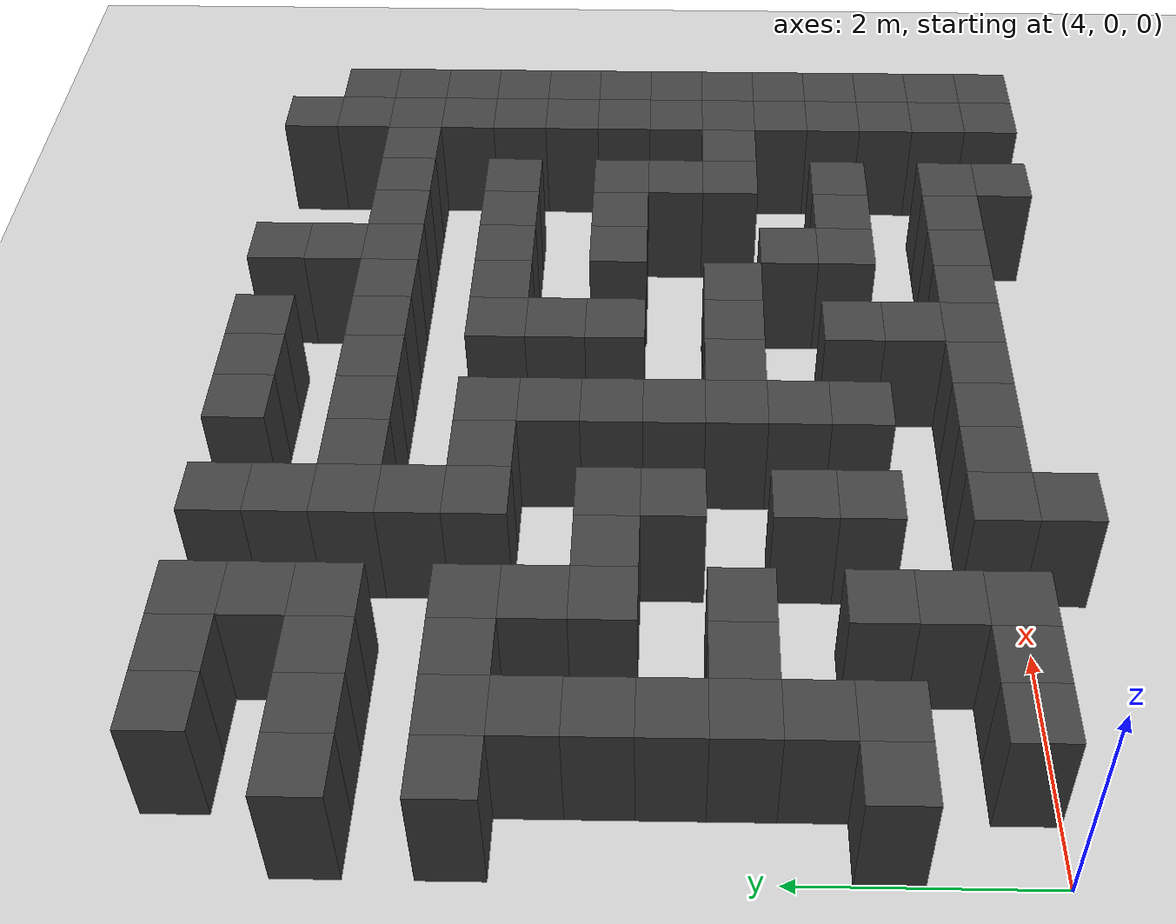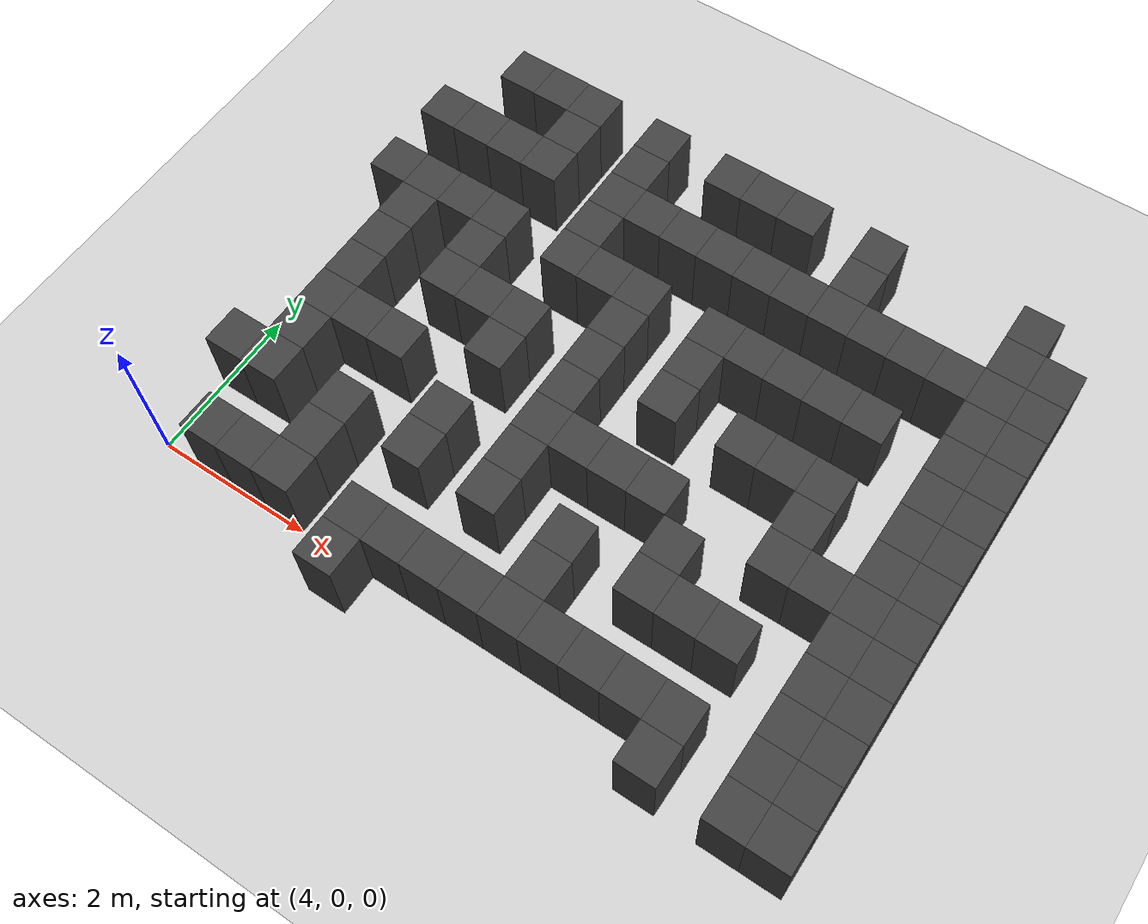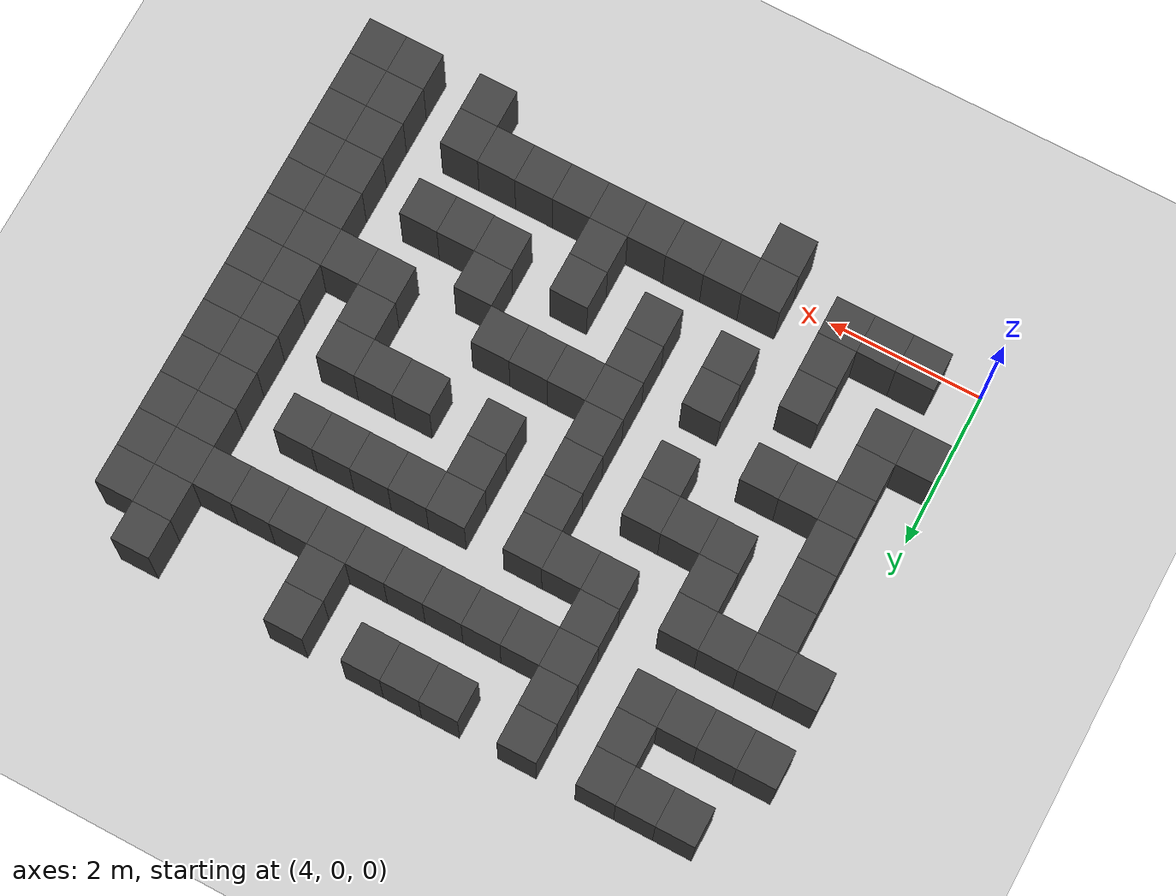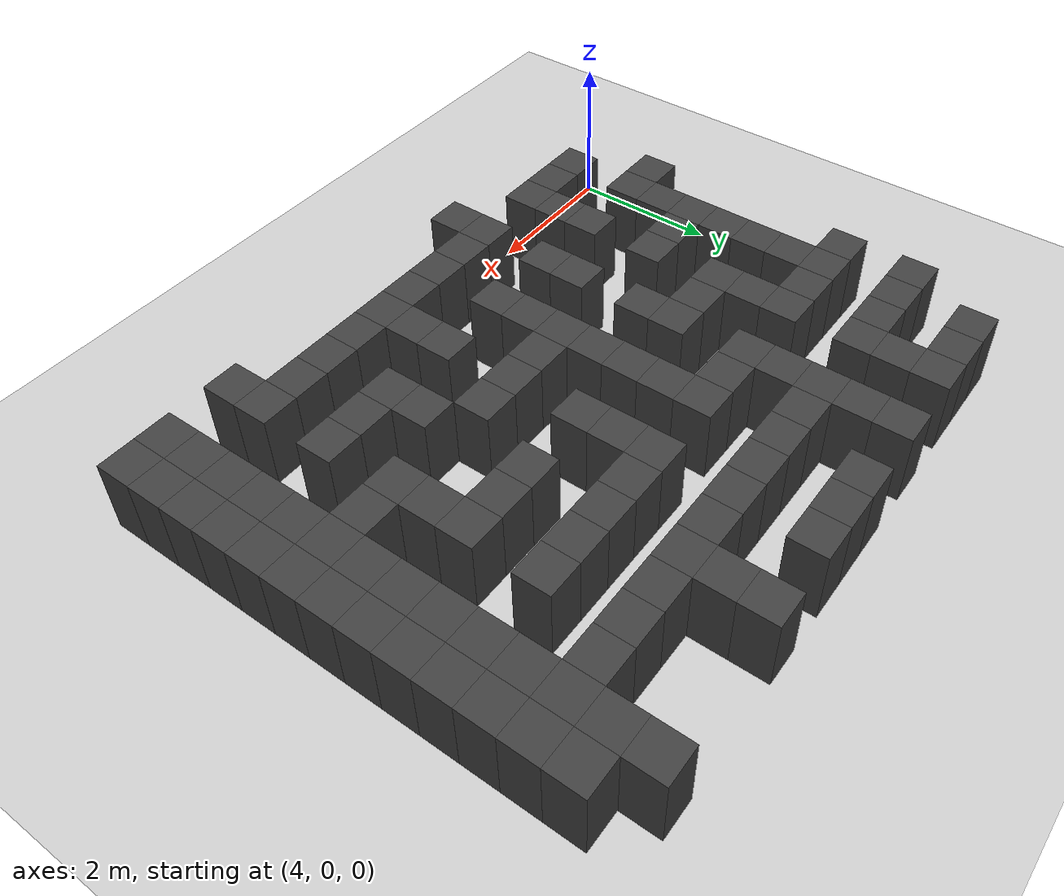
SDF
<sdf version="1.7">
 <world name="map_18914">
  <model name="ground_plane">
   <static>true</static>
   <link name="link">
    <collision name="collision">
     <geometry><plane><normal>0 0 1</normal><size>200 200</size></plane></geometry>
    </collision>
    <visual name="visual">
     <geometry><plane><normal>0 0 1</normal><size>200 200</size></plane></geometry>
     <material><ambient>0.8 0.8 0.8 1</ambient><diffuse>0.8 0.8 0.8 1</diffuse></material>
    </visual>
   </link>
  </model>
  <model name="maze_environment">
   <static>true</static>
   <link name="wall_338">
    <pose>4.750 6.250 0.500 0 0 0</pose>
    <collision name="col"><geometry><box><size>0.5 0.5 1.0</size></box></geometry></collision>
    <visual name="vis">
     <geometry><box><size>0.5 0.5 1.0</size></box></geometry>
     <material><ambient>0.15 0.15 0.15 1</ambient><diffuse>0.25 0.25 0.25 1</diffuse></material>
    </visual>
   </link>
   <link name="wall_339">
    <pose>5.250 6.250 0.500 0 0 0</pose>
    <collision name="col"><geometry><box><size>0.5 0.5 1.0</size></box></geometry></collision>
    <visual name="vis">
     <geometry><box><size>0.5 0.5 1.0</size></box></geometry>
     <material><ambient>0.15 0.15 0.15 1</ambient><diffuse>0.25 0.25 0.25 1</diffuse></material>
    </visual>
   </link>
   <link name="wall_340">
    <pose>5.750 6.250 0.500 0 0 0</pose>
    <collision name="col"><geometry><box><size>0.5 0.5 1.0</size></box></geometry></collision>
    <visual name="vis">
     <geometry><box><size>0.5 0.5 1.0</size></box></geometry>
     <material><ambient>0.15 0.15 0.15 1</ambient><diffuse>0.25 0.25 0.25 1</diffuse></material>
    </visual>
   </link>
   <link name="wall_341">
    <pose>6.750 6.250 0.500 0 0 0</pose>
    <collision name="col"><geometry><box><size>0.5 0.5 1.0</size></box></geometry></collision>
    <visual name="vis">
     <geometry><box><size>0.5 0.5 1.0</size></box></geometry>
     <material><ambient>0.15 0.15 0.15 1</ambient><diffuse>0.25 0.25 0.25 1</diffuse></material>
    </visual>
   </link>
   <link name="wall_342">
    <pose>7.750 6.250 0.500 0 0 0</pose>
    <collision name="col"><geometry><box><size>0.5 0.5 1.0</size></box></geometry></collision>
    <visual name="vis">
     <geometry><box><size>0.5 0.5 1.0</size></box></geometry>
     <material><ambient>0.15 0.15 0.15 1</ambient><diffuse>0.25 0.25 0.25 1</diffuse></material>
    </visual>
   </link>
   <link name="wall_343">
    <pose>8.250 6.250 0.500 0 0 0</pose>
    <collision name="col"><geometry><box><size>0.5 0.5 1.0</size></box></geometry></collision>
    <visual name="vis">
     <geometry><box><size>0.5 0.5 1.0</size></box></geometry>
     <material><ambient>0.15 0.15 0.15 1</ambient><diffuse>0.25 0.25 0.25 1</diffuse></material>
    </visual>
   </link>
   <link name="wall_344">
    <pose>8.750 6.250 0.500 0 0 0</pose>
    <collision name="col"><geometry><box><size>0.5 0.5 1.0</size></box></geometry></collision>
    <visual name="vis">
     <geometry><box><size>0.5 0.5 1.0</size></box></geometry>
     <material><ambient>0.15 0.15 0.15 1</ambient><diffuse>0.25 0.25 0.25 1</diffuse></material>
    </visual>
   </link>
   <link name="wall_345">
    <pose>9.750 6.250 0.500 0 0 0</pose>
    <collision name="col"><geometry><box><size>0.5 0.5 1.0</size></box></geometry></collision>
    <visual name="vis">
     <geometry><box><size>0.5 0.5 1.0</size></box></geometry>
     <material><ambient>0.15 0.15 0.15 1</ambient><diffuse>0.25 0.25 0.25 1</diffuse></material>
    </visual>
   </link>
   <link name="wall_346">
    <pose>11.750 6.250 0.500 0 0 0</pose>
    <collision name="col"><geometry><box><size>0.5 0.5 1.0</size></box></geometry></collision>
    <visual name="vis">
     <geometry><box><size>0.5 0.5 1.0</size></box></geometry>
     <material><ambient>0.15 0.15 0.15 1</ambient><diffuse>0.25 0.25 0.25 1</diffuse></material>
    </visual>
   </link>
   <link name="wall_357">
    <pose>5.750 5.750 0.500 0 0 0</pose>
    <collision name="col"><geometry><box><size>0.5 0.5 1.0</size></box></geometry></collision>
    <visual name="vis">
     <geometry><box><size>0.5 0.5 1.0</size></box></geometry>
     <material><ambient>0.15 0.15 0.15 1</ambient><diffuse>0.25 0.25 0.25 1</diffuse></material>
    </visual>
   </link>
   <link name="wall_358">
    <pose>6.750 5.750 0.500 0 0 0</pose>
    <collision name="col"><geometry><box><size>0.5 0.5 1.0</size></box></geometry></collision>
    <visual name="vis">
     <geometry><box><size>0.5 0.5 1.0</size></box></geometry>
     <material><ambient>0.15 0.15 0.15 1</ambient><diffuse>0.25 0.25 0.25 1</diffuse></material>
    </visual>
   </link>
   <link name="wall_359">
    <pose>9.750 5.750 0.500 0 0 0</pose>
    <collision name="col"><geometry><box><size>0.5 0.5 1.0</size></box></geometry></collision>
    <visual name="vis">
     <geometry><box><size>0.5 0.5 1.0</size></box></geometry>
     <material><ambient>0.15 0.15 0.15 1</ambient><diffuse>0.25 0.25 0.25 1</diffuse></material>
    </visual>
   </link>
   <link name="wall_360">
    <pose>11.750 5.750 0.500 0 0 0</pose>
    <collision name="col"><geometry><box><size>0.5 0.5 1.0</size></box></geometry></collision>
    <visual name="vis">
     <geometry><box><size>0.5 0.5 1.0</size></box></geometry>
     <material><ambient>0.15 0.15 0.15 1</ambient><diffuse>0.25 0.25 0.25 1</diffuse></material>
    </visual>
   </link>
   <link name="wall_361">
    <pose>12.250 5.750 0.500 0 0 0</pose>
    <collision name="col"><geometry><box><size>0.5 0.5 1.0</size></box></geometry></collision>
    <visual name="vis">
     <geometry><box><size>0.5 0.5 1.0</size></box></geometry>
     <material><ambient>0.15 0.15 0.15 1</ambient><diffuse>0.25 0.25 0.25 1</diffuse></material>
    </visual>
   </link>
   <link name="wall_386">
    <pose>4.250 5.250 0.500 0 0 0</pose>
    <collision name="col"><geometry><box><size>0.5 0.5 1.0</size></box></geometry></collision>
    <visual name="vis">
     <geometry><box><size>0.5 0.5 1.0</size></box></geometry>
     <material><ambient>0.15 0.15 0.15 1</ambient><diffuse>0.25 0.25 0.25 1</diffuse></material>
    </visual>
   </link>
   <link name="wall_387">
    <pose>4.750 5.250 0.500 0 0 0</pose>
    <collision name="col"><geometry><box><size>0.5 0.5 1.0</size></box></geometry></collision>
    <visual name="vis">
     <geometry><box><size>0.5 0.5 1.0</size></box></geometry>
     <material><ambient>0.15 0.15 0.15 1</ambient><diffuse>0.25 0.25 0.25 1</diffuse></material>
    </visual>
   </link>
   <link name="wall_388">
    <pose>5.250 5.250 0.500 0 0 0</pose>
    <collision name="col"><geometry><box><size>0.5 0.5 1.0</size></box></geometry></collision>
    <visual name="vis">
     <geometry><box><size>0.5 0.5 1.0</size></box></geometry>
     <material><ambient>0.15 0.15 0.15 1</ambient><diffuse>0.25 0.25 0.25 1</diffuse></material>
    </visual>
   </link>
   <link name="wall_389">
    <pose>5.750 5.250 0.500 0 0 0</pose>
    <collision name="col"><geometry><box><size>0.5 0.5 1.0</size></box></geometry></collision>
    <visual name="vis">
     <geometry><box><size>0.5 0.5 1.0</size></box></geometry>
     <material><ambient>0.15 0.15 0.15 1</ambient><diffuse>0.25 0.25 0.25 1</diffuse></material>
    </visual>
   </link>
   <link name="wall_390">
    <pose>6.750 5.250 0.500 0 0 0</pose>
    <collision name="col"><geometry><box><size>0.5 0.5 1.0</size></box></geometry></collision>
    <visual name="vis">
     <geometry><box><size>0.5 0.5 1.0</size></box></geometry>
     <material><ambient>0.15 0.15 0.15 1</ambient><diffuse>0.25 0.25 0.25 1</diffuse></material>
    </visual>
   </link>
   <link name="wall_391">
    <pose>7.250 5.250 0.500 0 0 0</pose>
    <collision name="col"><geometry><box><size>0.5 0.5 1.0</size></box></geometry></collision>
    <visual name="vis">
     <geometry><box><size>0.5 0.5 1.0</size></box></geometry>
     <material><ambient>0.15 0.15 0.15 1</ambient><diffuse>0.25 0.25 0.25 1</diffuse></material>
    </visual>
   </link>
   <link name="wall_392">
    <pose>7.750 5.250 0.500 0 0 0</pose>
    <collision name="col"><geometry><box><size>0.5 0.5 1.0</size></box></geometry></collision>
    <visual name="vis">
     <geometry><box><size>0.5 0.5 1.0</size></box></geometry>
     <material><ambient>0.15 0.15 0.15 1</ambient><diffuse>0.25 0.25 0.25 1</diffuse></material>
    </visual>
   </link>
   <link name="wall_393">
    <pose>8.250 5.250 0.500 0 0 0</pose>
    <collision name="col"><geometry><box><size>0.5 0.5 1.0</size></box></geometry></collision>
    <visual name="vis">
     <geometry><box><size>0.5 0.5 1.0</size></box></geometry>
     <material><ambient>0.15 0.15 0.15 1</ambient><diffuse>0.25 0.25 0.25 1</diffuse></material>
    </visual>
   </link>
   <link name="wall_394">
    <pose>8.750 5.250 0.500 0 0 0</pose>
    <collision name="col"><geometry><box><size>0.5 0.5 1.0</size></box></geometry></collision>
    <visual name="vis">
     <geometry><box><size>0.5 0.5 1.0</size></box></geometry>
     <material><ambient>0.15 0.15 0.15 1</ambient><diffuse>0.25 0.25 0.25 1</diffuse></material>
    </visual>
   </link>
   <link name="wall_395">
    <pose>9.250 5.250 0.500 0 0 0</pose>
    <collision name="col"><geometry><box><size>0.5 0.5 1.0</size></box></geometry></collision>
    <visual name="vis">
     <geometry><box><size>0.5 0.5 1.0</size></box></geometry>
     <material><ambient>0.15 0.15 0.15 1</ambient><diffuse>0.25 0.25 0.25 1</diffuse></material>
    </visual>
   </link>
   <link name="wall_396">
    <pose>9.750 5.250 0.500 0 0 0</pose>
    <collision name="col"><geometry><box><size>0.5 0.5 1.0</size></box></geometry></collision>
    <visual name="vis">
     <geometry><box><size>0.5 0.5 1.0</size></box></geometry>
     <material><ambient>0.15 0.15 0.15 1</ambient><diffuse>0.25 0.25 0.25 1</diffuse></material>
    </visual>
   </link>
   <link name="wall_397">
    <pose>10.250 5.250 0.500 0 0 0</pose>
    <collision name="col"><geometry><box><size>0.5 0.5 1.0</size></box></geometry></collision>
    <visual name="vis">
     <geometry><box><size>0.5 0.5 1.0</size></box></geometry>
     <material><ambient>0.15 0.15 0.15 1</ambient><diffuse>0.25 0.25 0.25 1</diffuse></material>
    </visual>
   </link>
   <link name="wall_398">
    <pose>10.750 5.250 0.500 0 0 0</pose>
    <collision name="col"><geometry><box><size>0.5 0.5 1.0</size></box></geometry></collision>
    <visual name="vis">
     <geometry><box><size>0.5 0.5 1.0</size></box></geometry>
     <material><ambient>0.15 0.15 0.15 1</ambient><diffuse>0.25 0.25 0.25 1</diffuse></material>
    </visual>
   </link>
   <link name="wall_399">
    <pose>11.250 5.250 0.500 0 0 0</pose>
    <collision name="col"><geometry><box><size>0.5 0.5 1.0</size></box></geometry></collision>
    <visual name="vis">
     <geometry><box><size>0.5 0.5 1.0</size></box></geometry>
     <material><ambient>0.15 0.15 0.15 1</ambient><diffuse>0.25 0.25 0.25 1</diffuse></material>
    </visual>
   </link>
   <link name="wall_400">
    <pose>11.750 5.250 0.500 0 0 0</pose>
    <collision name="col"><geometry><box><size>0.5 0.5 1.0</size></box></geometry></collision>
    <visual name="vis">
     <geometry><box><size>0.5 0.5 1.0</size></box></geometry>
     <material><ambient>0.15 0.15 0.15 1</ambient><diffuse>0.25 0.25 0.25 1</diffuse></material>
    </visual>
   </link>
   <link name="wall_401">
    <pose>12.250 5.250 0.500 0 0 0</pose>
    <collision name="col"><geometry><box><size>0.5 0.5 1.0</size></box></geometry></collision>
    <visual name="vis">
     <geometry><box><size>0.5 0.5 1.0</size></box></geometry>
     <material><ambient>0.15 0.15 0.15 1</ambient><diffuse>0.25 0.25 0.25 1</diffuse></material>
    </visual>
   </link>
   <link name="wall_411">
    <pose>6.750 4.750 0.500 0 0 0</pose>
    <collision name="col"><geometry><box><size>0.5 0.5 1.0</size></box></geometry></collision>
    <visual name="vis">
     <geometry><box><size>0.5 0.5 1.0</size></box></geometry>
     <material><ambient>0.15 0.15 0.15 1</ambient><diffuse>0.25 0.25 0.25 1</diffuse></material>
    </visual>
   </link>
   <link name="wall_412">
    <pose>11.750 4.750 0.500 0 0 0</pose>
    <collision name="col"><geometry><box><size>0.5 0.5 1.0</size></box></geometry></collision>
    <visual name="vis">
     <geometry><box><size>0.5 0.5 1.0</size></box></geometry>
     <material><ambient>0.15 0.15 0.15 1</ambient><diffuse>0.25 0.25 0.25 1</diffuse></material>
    </visual>
   </link>
   <link name="wall_413">
    <pose>12.250 4.750 0.500 0 0 0</pose>
    <collision name="col"><geometry><box><size>0.5 0.5 1.0</size></box></geometry></collision>
    <visual name="vis">
     <geometry><box><size>0.5 0.5 1.0</size></box></geometry>
     <material><ambient>0.15 0.15 0.15 1</ambient><diffuse>0.25 0.25 0.25 1</diffuse></material>
    </visual>
   </link>
   <link name="wall_438">
    <pose>4.250 4.250 0.500 0 0 0</pose>
    <collision name="col"><geometry><box><size>0.5 0.5 1.0</size></box></geometry></collision>
    <visual name="vis">
     <geometry><box><size>0.5 0.5 1.0</size></box></geometry>
     <material><ambient>0.15 0.15 0.15 1</ambient><diffuse>0.25 0.25 0.25 1</diffuse></material>
    </visual>
   </link>
   <link name="wall_439">
    <pose>4.750 4.250 0.500 0 0 0</pose>
    <collision name="col"><geometry><box><size>0.5 0.5 1.0</size></box></geometry></collision>
    <visual name="vis">
     <geometry><box><size>0.5 0.5 1.0</size></box></geometry>
     <material><ambient>0.15 0.15 0.15 1</ambient><diffuse>0.25 0.25 0.25 1</diffuse></material>
    </visual>
   </link>
   <link name="wall_440">
    <pose>5.250 4.250 0.500 0 0 0</pose>
    <collision name="col"><geometry><box><size>0.5 0.5 1.0</size></box></geometry></collision>
    <visual name="vis">
     <geometry><box><size>0.5 0.5 1.0</size></box></geometry>
     <material><ambient>0.15 0.15 0.15 1</ambient><diffuse>0.25 0.25 0.25 1</diffuse></material>
    </visual>
   </link>
   <link name="wall_441">
    <pose>5.750 4.250 0.500 0 0 0</pose>
    <collision name="col"><geometry><box><size>0.5 0.5 1.0</size></box></geometry></collision>
    <visual name="vis">
     <geometry><box><size>0.5 0.5 1.0</size></box></geometry>
     <material><ambient>0.15 0.15 0.15 1</ambient><diffuse>0.25 0.25 0.25 1</diffuse></material>
    </visual>
   </link>
   <link name="wall_442">
    <pose>6.750 4.250 0.500 0 0 0</pose>
    <collision name="col"><geometry><box><size>0.5 0.5 1.0</size></box></geometry></collision>
    <visual name="vis">
     <geometry><box><size>0.5 0.5 1.0</size></box></geometry>
     <material><ambient>0.15 0.15 0.15 1</ambient><diffuse>0.25 0.25 0.25 1</diffuse></material>
    </visual>
   </link>
   <link name="wall_443">
    <pose>7.250 4.250 0.500 0 0 0</pose>
    <collision name="col"><geometry><box><size>0.5 0.5 1.0</size></box></geometry></collision>
    <visual name="vis">
     <geometry><box><size>0.5 0.5 1.0</size></box></geometry>
     <material><ambient>0.15 0.15 0.15 1</ambient><diffuse>0.25 0.25 0.25 1</diffuse></material>
    </visual>
   </link>
   <link name="wall_444">
    <pose>7.750 4.250 0.500 0 0 0</pose>
    <collision name="col"><geometry><box><size>0.5 0.5 1.0</size></box></geometry></collision>
    <visual name="vis">
     <geometry><box><size>0.5 0.5 1.0</size></box></geometry>
     <material><ambient>0.15 0.15 0.15 1</ambient><diffuse>0.25 0.25 0.25 1</diffuse></material>
    </visual>
   </link>
   <link name="wall_445">
    <pose>8.750 4.250 0.500 0 0 0</pose>
    <collision name="col"><geometry><box><size>0.5 0.5 1.0</size></box></geometry></collision>
    <visual name="vis">
     <geometry><box><size>0.5 0.5 1.0</size></box></geometry>
     <material><ambient>0.15 0.15 0.15 1</ambient><diffuse>0.25 0.25 0.25 1</diffuse></material>
    </visual>
   </link>
   <link name="wall_446">
    <pose>9.250 4.250 0.500 0 0 0</pose>
    <collision name="col"><geometry><box><size>0.5 0.5 1.0</size></box></geometry></collision>
    <visual name="vis">
     <geometry><box><size>0.5 0.5 1.0</size></box></geometry>
     <material><ambient>0.15 0.15 0.15 1</ambient><diffuse>0.25 0.25 0.25 1</diffuse></material>
    </visual>
   </link>
   <link name="wall_447">
    <pose>9.750 4.250 0.500 0 0 0</pose>
    <collision name="col"><geometry><box><size>0.5 0.5 1.0</size></box></geometry></collision>
    <visual name="vis">
     <geometry><box><size>0.5 0.5 1.0</size></box></geometry>
     <material><ambient>0.15 0.15 0.15 1</ambient><diffuse>0.25 0.25 0.25 1</diffuse></material>
    </visual>
   </link>
   <link name="wall_448">
    <pose>10.250 4.250 0.500 0 0 0</pose>
    <collision name="col"><geometry><box><size>0.5 0.5 1.0</size></box></geometry></collision>
    <visual name="vis">
     <geometry><box><size>0.5 0.5 1.0</size></box></geometry>
     <material><ambient>0.15 0.15 0.15 1</ambient><diffuse>0.25 0.25 0.25 1</diffuse></material>
    </visual>
   </link>
   <link name="wall_449">
    <pose>10.750 4.250 0.500 0 0 0</pose>
    <collision name="col"><geometry><box><size>0.5 0.5 1.0</size></box></geometry></collision>
    <visual name="vis">
     <geometry><box><size>0.5 0.5 1.0</size></box></geometry>
     <material><ambient>0.15 0.15 0.15 1</ambient><diffuse>0.25 0.25 0.25 1</diffuse></material>
    </visual>
   </link>
   <link name="wall_450">
    <pose>11.750 4.250 0.500 0 0 0</pose>
    <collision name="col"><geometry><box><size>0.5 0.5 1.0</size></box></geometry></collision>
    <visual name="vis">
     <geometry><box><size>0.5 0.5 1.0</size></box></geometry>
     <material><ambient>0.15 0.15 0.15 1</ambient><diffuse>0.25 0.25 0.25 1</diffuse></material>
    </visual>
   </link>
   <link name="wall_451">
    <pose>12.250 4.250 0.500 0 0 0</pose>
    <collision name="col"><geometry><box><size>0.5 0.5 1.0</size></box></geometry></collision>
    <visual name="vis">
     <geometry><box><size>0.5 0.5 1.0</size></box></geometry>
     <material><ambient>0.15 0.15 0.15 1</ambient><diffuse>0.25 0.25 0.25 1</diffuse></material>
    </visual>
   </link>
   <link name="wall_458">
    <pose>4.750 3.750 0.500 0 0 0</pose>
    <collision name="col"><geometry><box><size>0.5 0.5 1.0</size></box></geometry></collision>
    <visual name="vis">
     <geometry><box><size>0.5 0.5 1.0</size></box></geometry>
     <material><ambient>0.15 0.15 0.15 1</ambient><diffuse>0.25 0.25 0.25 1</diffuse></material>
    </visual>
   </link>
   <link name="wall_459">
    <pose>5.750 3.750 0.500 0 0 0</pose>
    <collision name="col"><geometry><box><size>0.5 0.5 1.0</size></box></geometry></collision>
    <visual name="vis">
     <geometry><box><size>0.5 0.5 1.0</size></box></geometry>
     <material><ambient>0.15 0.15 0.15 1</ambient><diffuse>0.25 0.25 0.25 1</diffuse></material>
    </visual>
   </link>
   <link name="wall_460">
    <pose>7.750 3.750 0.500 0 0 0</pose>
    <collision name="col"><geometry><box><size>0.5 0.5 1.0</size></box></geometry></collision>
    <visual name="vis">
     <geometry><box><size>0.5 0.5 1.0</size></box></geometry>
     <material><ambient>0.15 0.15 0.15 1</ambient><diffuse>0.25 0.25 0.25 1</diffuse></material>
    </visual>
   </link>
   <link name="wall_461">
    <pose>8.750 3.750 0.500 0 0 0</pose>
    <collision name="col"><geometry><box><size>0.5 0.5 1.0</size></box></geometry></collision>
    <visual name="vis">
     <geometry><box><size>0.5 0.5 1.0</size></box></geometry>
     <material><ambient>0.15 0.15 0.15 1</ambient><diffuse>0.25 0.25 0.25 1</diffuse></material>
    </visual>
   </link>
   <link name="wall_462">
    <pose>11.750 3.750 0.500 0 0 0</pose>
    <collision name="col"><geometry><box><size>0.5 0.5 1.0</size></box></geometry></collision>
    <visual name="vis">
     <geometry><box><size>0.5 0.5 1.0</size></box></geometry>
     <material><ambient>0.15 0.15 0.15 1</ambient><diffuse>0.25 0.25 0.25 1</diffuse></material>
    </visual>
   </link>
   <link name="wall_463">
    <pose>12.250 3.750 0.500 0 0 0</pose>
    <collision name="col"><geometry><box><size>0.5 0.5 1.0</size></box></geometry></collision>
    <visual name="vis">
     <geometry><box><size>0.5 0.5 1.0</size></box></geometry>
     <material><ambient>0.15 0.15 0.15 1</ambient><diffuse>0.25 0.25 0.25 1</diffuse></material>
    </visual>
   </link>
   <link name="wall_493">
    <pose>4.750 3.250 0.500 0 0 0</pose>
    <collision name="col"><geometry><box><size>0.5 0.5 1.0</size></box></geometry></collision>
    <visual name="vis">
     <geometry><box><size>0.5 0.5 1.0</size></box></geometry>
     <material><ambient>0.15 0.15 0.15 1</ambient><diffuse>0.25 0.25 0.25 1</diffuse></material>
    </visual>
   </link>
   <link name="wall_494">
    <pose>5.750 3.250 0.500 0 0 0</pose>
    <collision name="col"><geometry><box><size>0.5 0.5 1.0</size></box></geometry></collision>
    <visual name="vis">
     <geometry><box><size>0.5 0.5 1.0</size></box></geometry>
     <material><ambient>0.15 0.15 0.15 1</ambient><diffuse>0.25 0.25 0.25 1</diffuse></material>
    </visual>
   </link>
   <link name="wall_495">
    <pose>6.250 3.250 0.500 0 0 0</pose>
    <collision name="col"><geometry><box><size>0.5 0.5 1.0</size></box></geometry></collision>
    <visual name="vis">
     <geometry><box><size>0.5 0.5 1.0</size></box></geometry>
     <material><ambient>0.15 0.15 0.15 1</ambient><diffuse>0.25 0.25 0.25 1</diffuse></material>
    </visual>
   </link>
   <link name="wall_496">
    <pose>6.750 3.250 0.500 0 0 0</pose>
    <collision name="col"><geometry><box><size>0.5 0.5 1.0</size></box></geometry></collision>
    <visual name="vis">
     <geometry><box><size>0.5 0.5 1.0</size></box></geometry>
     <material><ambient>0.15 0.15 0.15 1</ambient><diffuse>0.25 0.25 0.25 1</diffuse></material>
    </visual>
   </link>
   <link name="wall_497">
    <pose>7.750 3.250 0.500 0 0 0</pose>
    <collision name="col"><geometry><box><size>0.5 0.5 1.0</size></box></geometry></collision>
    <visual name="vis">
     <geometry><box><size>0.5 0.5 1.0</size></box></geometry>
     <material><ambient>0.15 0.15 0.15 1</ambient><diffuse>0.25 0.25 0.25 1</diffuse></material>
    </visual>
   </link>
   <link name="wall_498">
    <pose>8.750 3.250 0.500 0 0 0</pose>
    <collision name="col"><geometry><box><size>0.5 0.5 1.0</size></box></geometry></collision>
    <visual name="vis">
     <geometry><box><size>0.5 0.5 1.0</size></box></geometry>
     <material><ambient>0.15 0.15 0.15 1</ambient><diffuse>0.25 0.25 0.25 1</diffuse></material>
    </visual>
   </link>
   <link name="wall_499">
    <pose>9.750 3.250 0.500 0 0 0</pose>
    <collision name="col"><geometry><box><size>0.5 0.5 1.0</size></box></geometry></collision>
    <visual name="vis">
     <geometry><box><size>0.5 0.5 1.0</size></box></geometry>
     <material><ambient>0.15 0.15 0.15 1</ambient><diffuse>0.25 0.25 0.25 1</diffuse></material>
    </visual>
   </link>
   <link name="wall_500">
    <pose>10.250 3.250 0.500 0 0 0</pose>
    <collision name="col"><geometry><box><size>0.5 0.5 1.0</size></box></geometry></collision>
    <visual name="vis">
     <geometry><box><size>0.5 0.5 1.0</size></box></geometry>
     <material><ambient>0.15 0.15 0.15 1</ambient><diffuse>0.25 0.25 0.25 1</diffuse></material>
    </visual>
   </link>
   <link name="wall_501">
    <pose>10.750 3.250 0.500 0 0 0</pose>
    <collision name="col"><geometry><box><size>0.5 0.5 1.0</size></box></geometry></collision>
    <visual name="vis">
     <geometry><box><size>0.5 0.5 1.0</size></box></geometry>
     <material><ambient>0.15 0.15 0.15 1</ambient><diffuse>0.25 0.25 0.25 1</diffuse></material>
    </visual>
   </link>
   <link name="wall_502">
    <pose>11.750 3.250 0.500 0 0 0</pose>
    <collision name="col"><geometry><box><size>0.5 0.5 1.0</size></box></geometry></collision>
    <visual name="vis">
     <geometry><box><size>0.5 0.5 1.0</size></box></geometry>
     <material><ambient>0.15 0.15 0.15 1</ambient><diffuse>0.25 0.25 0.25 1</diffuse></material>
    </visual>
   </link>
   <link name="wall_503">
    <pose>12.250 3.250 0.500 0 0 0</pose>
    <collision name="col"><geometry><box><size>0.5 0.5 1.0</size></box></geometry></collision>
    <visual name="vis">
     <geometry><box><size>0.5 0.5 1.0</size></box></geometry>
     <material><ambient>0.15 0.15 0.15 1</ambient><diffuse>0.25 0.25 0.25 1</diffuse></material>
    </visual>
   </link>
   <link name="wall_510">
    <pose>4.750 2.750 0.500 0 0 0</pose>
    <collision name="col"><geometry><box><size>0.5 0.5 1.0</size></box></geometry></collision>
    <visual name="vis">
     <geometry><box><size>0.5 0.5 1.0</size></box></geometry>
     <material><ambient>0.15 0.15 0.15 1</ambient><diffuse>0.25 0.25 0.25 1</diffuse></material>
    </visual>
   </link>
   <link name="wall_511">
    <pose>6.750 2.750 0.500 0 0 0</pose>
    <collision name="col"><geometry><box><size>0.5 0.5 1.0</size></box></geometry></collision>
    <visual name="vis">
     <geometry><box><size>0.5 0.5 1.0</size></box></geometry>
     <material><ambient>0.15 0.15 0.15 1</ambient><diffuse>0.25 0.25 0.25 1</diffuse></material>
    </visual>
   </link>
   <link name="wall_512">
    <pose>7.750 2.750 0.500 0 0 0</pose>
    <collision name="col"><geometry><box><size>0.5 0.5 1.0</size></box></geometry></collision>
    <visual name="vis">
     <geometry><box><size>0.5 0.5 1.0</size></box></geometry>
     <material><ambient>0.15 0.15 0.15 1</ambient><diffuse>0.25 0.25 0.25 1</diffuse></material>
    </visual>
   </link>
   <link name="wall_513">
    <pose>10.750 2.750 0.500 0 0 0</pose>
    <collision name="col"><geometry><box><size>0.5 0.5 1.0</size></box></geometry></collision>
    <visual name="vis">
     <geometry><box><size>0.5 0.5 1.0</size></box></geometry>
     <material><ambient>0.15 0.15 0.15 1</ambient><diffuse>0.25 0.25 0.25 1</diffuse></material>
    </visual>
   </link>
   <link name="wall_514">
    <pose>11.750 2.750 0.500 0 0 0</pose>
    <collision name="col"><geometry><box><size>0.5 0.5 1.0</size></box></geometry></collision>
    <visual name="vis">
     <geometry><box><size>0.5 0.5 1.0</size></box></geometry>
     <material><ambient>0.15 0.15 0.15 1</ambient><diffuse>0.25 0.25 0.25 1</diffuse></material>
    </visual>
   </link>
   <link name="wall_515">
    <pose>12.250 2.750 0.500 0 0 0</pose>
    <collision name="col"><geometry><box><size>0.5 0.5 1.0</size></box></geometry></collision>
    <visual name="vis">
     <geometry><box><size>0.5 0.5 1.0</size></box></geometry>
     <material><ambient>0.15 0.15 0.15 1</ambient><diffuse>0.25 0.25 0.25 1</diffuse></material>
    </visual>
   </link>
   <link name="wall_541">
    <pose>4.750 2.250 0.500 0 0 0</pose>
    <collision name="col"><geometry><box><size>0.5 0.5 1.0</size></box></geometry></collision>
    <visual name="vis">
     <geometry><box><size>0.5 0.5 1.0</size></box></geometry>
     <material><ambient>0.15 0.15 0.15 1</ambient><diffuse>0.25 0.25 0.25 1</diffuse></material>
    </visual>
   </link>
   <link name="wall_542">
    <pose>5.250 2.250 0.500 0 0 0</pose>
    <collision name="col"><geometry><box><size>0.5 0.5 1.0</size></box></geometry></collision>
    <visual name="vis">
     <geometry><box><size>0.5 0.5 1.0</size></box></geometry>
     <material><ambient>0.15 0.15 0.15 1</ambient><diffuse>0.25 0.25 0.25 1</diffuse></material>
    </visual>
   </link>
   <link name="wall_543">
    <pose>5.750 2.250 0.500 0 0 0</pose>
    <collision name="col"><geometry><box><size>0.5 0.5 1.0</size></box></geometry></collision>
    <visual name="vis">
     <geometry><box><size>0.5 0.5 1.0</size></box></geometry>
     <material><ambient>0.15 0.15 0.15 1</ambient><diffuse>0.25 0.25 0.25 1</diffuse></material>
    </visual>
   </link>
   <link name="wall_544">
    <pose>7.750 2.250 0.500 0 0 0</pose>
    <collision name="col"><geometry><box><size>0.5 0.5 1.0</size></box></geometry></collision>
    <visual name="vis">
     <geometry><box><size>0.5 0.5 1.0</size></box></geometry>
     <material><ambient>0.15 0.15 0.15 1</ambient><diffuse>0.25 0.25 0.25 1</diffuse></material>
    </visual>
   </link>
   <link name="wall_545">
    <pose>8.250 2.250 0.500 0 0 0</pose>
    <collision name="col"><geometry><box><size>0.5 0.5 1.0</size></box></geometry></collision>
    <visual name="vis">
     <geometry><box><size>0.5 0.5 1.0</size></box></geometry>
     <material><ambient>0.15 0.15 0.15 1</ambient><diffuse>0.25 0.25 0.25 1</diffuse></material>
    </visual>
   </link>
   <link name="wall_546">
    <pose>8.750 2.250 0.500 0 0 0</pose>
    <collision name="col"><geometry><box><size>0.5 0.5 1.0</size></box></geometry></collision>
    <visual name="vis">
     <geometry><box><size>0.5 0.5 1.0</size></box></geometry>
     <material><ambient>0.15 0.15 0.15 1</ambient><diffuse>0.25 0.25 0.25 1</diffuse></material>
    </visual>
   </link>
   <link name="wall_547">
    <pose>9.250 2.250 0.500 0 0 0</pose>
    <collision name="col"><geometry><box><size>0.5 0.5 1.0</size></box></geometry></collision>
    <visual name="vis">
     <geometry><box><size>0.5 0.5 1.0</size></box></geometry>
     <material><ambient>0.15 0.15 0.15 1</ambient><diffuse>0.25 0.25 0.25 1</diffuse></material>
    </visual>
   </link>
   <link name="wall_548">
    <pose>10.750 2.250 0.500 0 0 0</pose>
    <collision name="col"><geometry><box><size>0.5 0.5 1.0</size></box></geometry></collision>
    <visual name="vis">
     <geometry><box><size>0.5 0.5 1.0</size></box></geometry>
     <material><ambient>0.15 0.15 0.15 1</ambient><diffuse>0.25 0.25 0.25 1</diffuse></material>
    </visual>
   </link>
   <link name="wall_549">
    <pose>11.250 2.250 0.500 0 0 0</pose>
    <collision name="col"><geometry><box><size>0.5 0.5 1.0</size></box></geometry></collision>
    <visual name="vis">
     <geometry><box><size>0.5 0.5 1.0</size></box></geometry>
     <material><ambient>0.15 0.15 0.15 1</ambient><diffuse>0.25 0.25 0.25 1</diffuse></material>
    </visual>
   </link>
   <link name="wall_550">
    <pose>11.750 2.250 0.500 0 0 0</pose>
    <collision name="col"><geometry><box><size>0.5 0.5 1.0</size></box></geometry></collision>
    <visual name="vis">
     <geometry><box><size>0.5 0.5 1.0</size></box></geometry>
     <material><ambient>0.15 0.15 0.15 1</ambient><diffuse>0.25 0.25 0.25 1</diffuse></material>
    </visual>
   </link>
   <link name="wall_551">
    <pose>12.250 2.250 0.500 0 0 0</pose>
    <collision name="col"><geometry><box><size>0.5 0.5 1.0</size></box></geometry></collision>
    <visual name="vis">
     <geometry><box><size>0.5 0.5 1.0</size></box></geometry>
     <material><ambient>0.15 0.15 0.15 1</ambient><diffuse>0.25 0.25 0.25 1</diffuse></material>
    </visual>
   </link>
   <link name="wall_560">
    <pose>4.750 1.750 0.500 0 0 0</pose>
    <collision name="col"><geometry><box><size>0.5 0.5 1.0</size></box></geometry></collision>
    <visual name="vis">
     <geometry><box><size>0.5 0.5 1.0</size></box></geometry>
     <material><ambient>0.15 0.15 0.15 1</ambient><diffuse>0.25 0.25 0.25 1</diffuse></material>
    </visual>
   </link>
   <link name="wall_561">
    <pose>6.750 1.750 0.500 0 0 0</pose>
    <collision name="col"><geometry><box><size>0.5 0.5 1.0</size></box></geometry></collision>
    <visual name="vis">
     <geometry><box><size>0.5 0.5 1.0</size></box></geometry>
     <material><ambient>0.15 0.15 0.15 1</ambient><diffuse>0.25 0.25 0.25 1</diffuse></material>
    </visual>
   </link>
   <link name="wall_562">
    <pose>7.750 1.750 0.500 0 0 0</pose>
    <collision name="col"><geometry><box><size>0.5 0.5 1.0</size></box></geometry></collision>
    <visual name="vis">
     <geometry><box><size>0.5 0.5 1.0</size></box></geometry>
     <material><ambient>0.15 0.15 0.15 1</ambient><diffuse>0.25 0.25 0.25 1</diffuse></material>
    </visual>
   </link>
   <link name="wall_563">
    <pose>9.750 1.750 0.500 0 0 0</pose>
    <collision name="col"><geometry><box><size>0.5 0.5 1.0</size></box></geometry></collision>
    <visual name="vis">
     <geometry><box><size>0.5 0.5 1.0</size></box></geometry>
     <material><ambient>0.15 0.15 0.15 1</ambient><diffuse>0.25 0.25 0.25 1</diffuse></material>
    </visual>
   </link>
   <link name="wall_564">
    <pose>11.750 1.750 0.500 0 0 0</pose>
    <collision name="col"><geometry><box><size>0.5 0.5 1.0</size></box></geometry></collision>
    <visual name="vis">
     <geometry><box><size>0.5 0.5 1.0</size></box></geometry>
     <material><ambient>0.15 0.15 0.15 1</ambient><diffuse>0.25 0.25 0.25 1</diffuse></material>
    </visual>
   </link>
   <link name="wall_565">
    <pose>12.250 1.750 0.500 0 0 0</pose>
    <collision name="col"><geometry><box><size>0.5 0.5 1.0</size></box></geometry></collision>
    <visual name="vis">
     <geometry><box><size>0.5 0.5 1.0</size></box></geometry>
     <material><ambient>0.15 0.15 0.15 1</ambient><diffuse>0.25 0.25 0.25 1</diffuse></material>
    </visual>
   </link>
   <link name="wall_591">
    <pose>4.250 1.250 0.500 0 0 0</pose>
    <collision name="col"><geometry><box><size>0.5 0.5 1.0</size></box></geometry></collision>
    <visual name="vis">
     <geometry><box><size>0.5 0.5 1.0</size></box></geometry>
     <material><ambient>0.15 0.15 0.15 1</ambient><diffuse>0.25 0.25 0.25 1</diffuse></material>
    </visual>
   </link>
   <link name="wall_592">
    <pose>4.750 1.250 0.500 0 0 0</pose>
    <collision name="col"><geometry><box><size>0.5 0.5 1.0</size></box></geometry></collision>
    <visual name="vis">
     <geometry><box><size>0.5 0.5 1.0</size></box></geometry>
     <material><ambient>0.15 0.15 0.15 1</ambient><diffuse>0.25 0.25 0.25 1</diffuse></material>
    </visual>
   </link>
   <link name="wall_593">
    <pose>5.750 1.250 0.500 0 0 0</pose>
    <collision name="col"><geometry><box><size>0.5 0.5 1.0</size></box></geometry></collision>
    <visual name="vis">
     <geometry><box><size>0.5 0.5 1.0</size></box></geometry>
     <material><ambient>0.15 0.15 0.15 1</ambient><diffuse>0.25 0.25 0.25 1</diffuse></material>
    </visual>
   </link>
   <link name="wall_594">
    <pose>6.750 1.250 0.500 0 0 0</pose>
    <collision name="col"><geometry><box><size>0.5 0.5 1.0</size></box></geometry></collision>
    <visual name="vis">
     <geometry><box><size>0.5 0.5 1.0</size></box></geometry>
     <material><ambient>0.15 0.15 0.15 1</ambient><diffuse>0.25 0.25 0.25 1</diffuse></material>
    </visual>
   </link>
   <link name="wall_595">
    <pose>7.750 1.250 0.500 0 0 0</pose>
    <collision name="col"><geometry><box><size>0.5 0.5 1.0</size></box></geometry></collision>
    <visual name="vis">
     <geometry><box><size>0.5 0.5 1.0</size></box></geometry>
     <material><ambient>0.15 0.15 0.15 1</ambient><diffuse>0.25 0.25 0.25 1</diffuse></material>
    </visual>
   </link>
   <link name="wall_596">
    <pose>8.750 1.250 0.500 0 0 0</pose>
    <collision name="col"><geometry><box><size>0.5 0.5 1.0</size></box></geometry></collision>
    <visual name="vis">
     <geometry><box><size>0.5 0.5 1.0</size></box></geometry>
     <material><ambient>0.15 0.15 0.15 1</ambient><diffuse>0.25 0.25 0.25 1</diffuse></material>
    </visual>
   </link>
   <link name="wall_597">
    <pose>9.750 1.250 0.500 0 0 0</pose>
    <collision name="col"><geometry><box><size>0.5 0.5 1.0</size></box></geometry></collision>
    <visual name="vis">
     <geometry><box><size>0.5 0.5 1.0</size></box></geometry>
     <material><ambient>0.15 0.15 0.15 1</ambient><diffuse>0.25 0.25 0.25 1</diffuse></material>
    </visual>
   </link>
   <link name="wall_598">
    <pose>10.250 1.250 0.500 0 0 0</pose>
    <collision name="col"><geometry><box><size>0.5 0.5 1.0</size></box></geometry></collision>
    <visual name="vis">
     <geometry><box><size>0.5 0.5 1.0</size></box></geometry>
     <material><ambient>0.15 0.15 0.15 1</ambient><diffuse>0.25 0.25 0.25 1</diffuse></material>
    </visual>
   </link>
   <link name="wall_599">
    <pose>10.750 1.250 0.500 0 0 0</pose>
    <collision name="col"><geometry><box><size>0.5 0.5 1.0</size></box></geometry></collision>
    <visual name="vis">
     <geometry><box><size>0.5 0.5 1.0</size></box></geometry>
     <material><ambient>0.15 0.15 0.15 1</ambient><diffuse>0.25 0.25 0.25 1</diffuse></material>
    </visual>
   </link>
   <link name="wall_600">
    <pose>11.750 1.250 0.500 0 0 0</pose>
    <collision name="col"><geometry><box><size>0.5 0.5 1.0</size></box></geometry></collision>
    <visual name="vis">
     <geometry><box><size>0.5 0.5 1.0</size></box></geometry>
     <material><ambient>0.15 0.15 0.15 1</ambient><diffuse>0.25 0.25 0.25 1</diffuse></material>
    </visual>
   </link>
   <link name="wall_601">
    <pose>12.250 1.250 0.500 0 0 0</pose>
    <collision name="col"><geometry><box><size>0.5 0.5 1.0</size></box></geometry></collision>
    <visual name="vis">
     <geometry><box><size>0.5 0.5 1.0</size></box></geometry>
     <material><ambient>0.15 0.15 0.15 1</ambient><diffuse>0.25 0.25 0.25 1</diffuse></material>
    </visual>
   </link>
   <link name="wall_610">
    <pose>5.750 0.750 0.500 0 0 0</pose>
    <collision name="col"><geometry><box><size>0.5 0.5 1.0</size></box></geometry></collision>
    <visual name="vis">
     <geometry><box><size>0.5 0.5 1.0</size></box></geometry>
     <material><ambient>0.15 0.15 0.15 1</ambient><diffuse>0.25 0.25 0.25 1</diffuse></material>
    </visual>
   </link>
   <link name="wall_611">
    <pose>8.750 0.750 0.500 0 0 0</pose>
    <collision name="col"><geometry><box><size>0.5 0.5 1.0</size></box></geometry></collision>
    <visual name="vis">
     <geometry><box><size>0.5 0.5 1.0</size></box></geometry>
     <material><ambient>0.15 0.15 0.15 1</ambient><diffuse>0.25 0.25 0.25 1</diffuse></material>
    </visual>
   </link>
   <link name="wall_612">
    <pose>11.750 0.750 0.500 0 0 0</pose>
    <collision name="col"><geometry><box><size>0.5 0.5 1.0</size></box></geometry></collision>
    <visual name="vis">
     <geometry><box><size>0.5 0.5 1.0</size></box></geometry>
     <material><ambient>0.15 0.15 0.15 1</ambient><diffuse>0.25 0.25 0.25 1</diffuse></material>
    </visual>
   </link>
   <link name="wall_613">
    <pose>12.250 0.750 0.500 0 0 0</pose>
    <collision name="col"><geometry><box><size>0.5 0.5 1.0</size></box></geometry></collision>
    <visual name="vis">
     <geometry><box><size>0.5 0.5 1.0</size></box></geometry>
     <material><ambient>0.15 0.15 0.15 1</ambient><diffuse>0.25 0.25 0.25 1</diffuse></material>
    </visual>
   </link>
   <link name="wall_638">
    <pose>4.750 0.250 0.500 0 0 0</pose>
    <collision name="col"><geometry><box><size>0.5 0.5 1.0</size></box></geometry></collision>
    <visual name="vis">
     <geometry><box><size>0.5 0.5 1.0</size></box></geometry>
     <material><ambient>0.15 0.15 0.15 1</ambient><diffuse>0.25 0.25 0.25 1</diffuse></material>
    </visual>
   </link>
   <link name="wall_639">
    <pose>5.250 0.250 0.500 0 0 0</pose>
    <collision name="col"><geometry><box><size>0.5 0.5 1.0</size></box></geometry></collision>
    <visual name="vis">
     <geometry><box><size>0.5 0.5 1.0</size></box></geometry>
     <material><ambient>0.15 0.15 0.15 1</ambient><diffuse>0.25 0.25 0.25 1</diffuse></material>
    </visual>
   </link>
   <link name="wall_640">
    <pose>5.750 0.250 0.500 0 0 0</pose>
    <collision name="col"><geometry><box><size>0.5 0.5 1.0</size></box></geometry></collision>
    <visual name="vis">
     <geometry><box><size>0.5 0.5 1.0</size></box></geometry>
     <material><ambient>0.15 0.15 0.15 1</ambient><diffuse>0.25 0.25 0.25 1</diffuse></material>
    </visual>
   </link>
   <link name="wall_641">
    <pose>6.750 0.250 0.500 0 0 0</pose>
    <collision name="col"><geometry><box><size>0.5 0.5 1.0</size></box></geometry></collision>
    <visual name="vis">
     <geometry><box><size>0.5 0.5 1.0</size></box></geometry>
     <material><ambient>0.15 0.15 0.15 1</ambient><diffuse>0.25 0.25 0.25 1</diffuse></material>
    </visual>
   </link>
   <link name="wall_642">
    <pose>7.250 0.250 0.500 0 0 0</pose>
    <collision name="col"><geometry><box><size>0.5 0.5 1.0</size></box></geometry></collision>
    <visual name="vis">
     <geometry><box><size>0.5 0.5 1.0</size></box></geometry>
     <material><ambient>0.15 0.15 0.15 1</ambient><diffuse>0.25 0.25 0.25 1</diffuse></material>
    </visual>
   </link>
   <link name="wall_643">
    <pose>7.750 0.250 0.500 0 0 0</pose>
    <collision name="col"><geometry><box><size>0.5 0.5 1.0</size></box></geometry></collision>
    <visual name="vis">
     <geometry><box><size>0.5 0.5 1.0</size></box></geometry>
     <material><ambient>0.15 0.15 0.15 1</ambient><diffuse>0.25 0.25 0.25 1</diffuse></material>
    </visual>
   </link>
   <link name="wall_644">
    <pose>8.250 0.250 0.500 0 0 0</pose>
    <collision name="col"><geometry><box><size>0.5 0.5 1.0</size></box></geometry></collision>
    <visual name="vis">
     <geometry><box><size>0.5 0.5 1.0</size></box></geometry>
     <material><ambient>0.15 0.15 0.15 1</ambient><diffuse>0.25 0.25 0.25 1</diffuse></material>
    </visual>
   </link>
   <link name="wall_645">
    <pose>8.750 0.250 0.500 0 0 0</pose>
    <collision name="col"><geometry><box><size>0.5 0.5 1.0</size></box></geometry></collision>
    <visual name="vis">
     <geometry><box><size>0.5 0.5 1.0</size></box></geometry>
     <material><ambient>0.15 0.15 0.15 1</ambient><diffuse>0.25 0.25 0.25 1</diffuse></material>
    </visual>
   </link>
   <link name="wall_646">
    <pose>9.250 0.250 0.500 0 0 0</pose>
    <collision name="col"><geometry><box><size>0.5 0.5 1.0</size></box></geometry></collision>
    <visual name="vis">
     <geometry><box><size>0.5 0.5 1.0</size></box></geometry>
     <material><ambient>0.15 0.15 0.15 1</ambient><diffuse>0.25 0.25 0.25 1</diffuse></material>
    </visual>
   </link>
   <link name="wall_647">
    <pose>9.750 0.250 0.500 0 0 0</pose>
    <collision name="col"><geometry><box><size>0.5 0.5 1.0</size></box></geometry></collision>
    <visual name="vis">
     <geometry><box><size>0.5 0.5 1.0</size></box></geometry>
     <material><ambient>0.15 0.15 0.15 1</ambient><diffuse>0.25 0.25 0.25 1</diffuse></material>
    </visual>
   </link>
   <link name="wall_648">
    <pose>10.250 0.250 0.500 0 0 0</pose>
    <collision name="col"><geometry><box><size>0.5 0.5 1.0</size></box></geometry></collision>
    <visual name="vis">
     <geometry><box><size>0.5 0.5 1.0</size></box></geometry>
     <material><ambient>0.15 0.15 0.15 1</ambient><diffuse>0.25 0.25 0.25 1</diffuse></material>
    </visual>
   </link>
   <link name="wall_649">
    <pose>10.750 0.250 0.500 0 0 0</pose>
    <collision name="col"><geometry><box><size>0.5 0.5 1.0</size></box></geometry></collision>
    <visual name="vis">
     <geometry><box><size>0.5 0.5 1.0</size></box></geometry>
     <material><ambient>0.15 0.15 0.15 1</ambient><diffuse>0.25 0.25 0.25 1</diffuse></material>
    </visual>
   </link>
   <link name="wall_650">
    <pose>11.750 0.250 0.500 0 0 0</pose>
    <collision name="col"><geometry><box><size>0.5 0.5 1.0</size></box></geometry></collision>
    <visual name="vis">
     <geometry><box><size>0.5 0.5 1.0</size></box></geometry>
     <material><ambient>0.15 0.15 0.15 1</ambient><diffuse>0.25 0.25 0.25 1</diffuse></material>
    </visual>
   </link>
   <link name="wall_651">
    <pose>12.250 0.250 0.500 0 0 0</pose>
    <collision name="col"><geometry><box><size>0.5 0.5 1.0</size></box></geometry></collision>
    <visual name="vis">
     <geometry><box><size>0.5 0.5 1.0</size></box></geometry>
     <material><ambient>0.15 0.15 0.15 1</ambient><diffuse>0.25 0.25 0.25 1</diffuse></material>
    </visual>
   </link>
   <link name="wall_661">
    <pose>6.750 -0.250 0.500 0 0 0</pose>
    <collision name="col"><geometry><box><size>0.5 0.5 1.0</size></box></geometry></collision>
    <visual name="vis">
     <geometry><box><size>0.5 0.5 1.0</size></box></geometry>
     <material><ambient>0.15 0.15 0.15 1</ambient><diffuse>0.25 0.25 0.25 1</diffuse></material>
    </visual>
   </link>
   <link name="wall_662">
    <pose>10.750 -0.250 0.500 0 0 0</pose>
    <collision name="col"><geometry><box><size>0.5 0.5 1.0</size></box></geometry></collision>
    <visual name="vis">
     <geometry><box><size>0.5 0.5 1.0</size></box></geometry>
     <material><ambient>0.15 0.15 0.15 1</ambient><diffuse>0.25 0.25 0.25 1</diffuse></material>
    </visual>
   </link>
   <link name="wall_663">
    <pose>11.750 -0.250 0.500 0 0 0</pose>
    <collision name="col"><geometry><box><size>0.5 0.5 1.0</size></box></geometry></collision>
    <visual name="vis">
     <geometry><box><size>0.5 0.5 1.0</size></box></geometry>
     <material><ambient>0.15 0.15 0.15 1</ambient><diffuse>0.25 0.25 0.25 1</diffuse></material>
    </visual>
   </link>
   <link name="wall_664">
    <pose>12.250 -0.250 0.500 0 0 0</pose>
    <collision name="col"><geometry><box><size>0.5 0.5 1.0</size></box></geometry></collision>
    <visual name="vis">
     <geometry><box><size>0.5 0.5 1.0</size></box></geometry>
     <material><ambient>0.15 0.15 0.15 1</ambient><diffuse>0.25 0.25 0.25 1</diffuse></material>
    </visual>
   </link>
  </model>
 </world>
</sdf>
